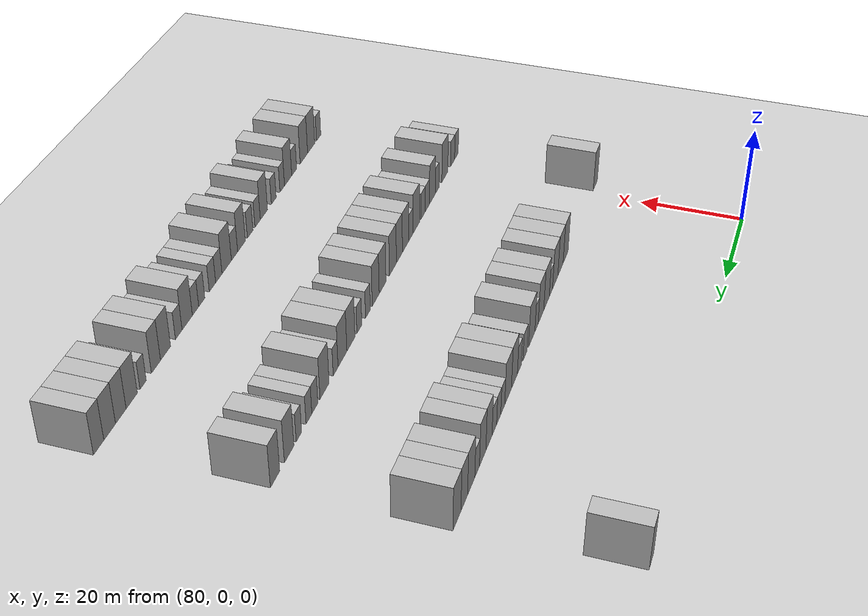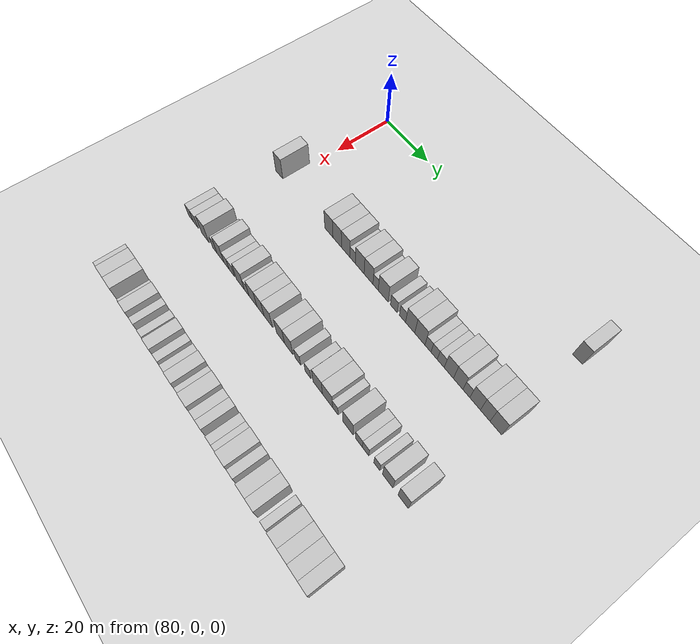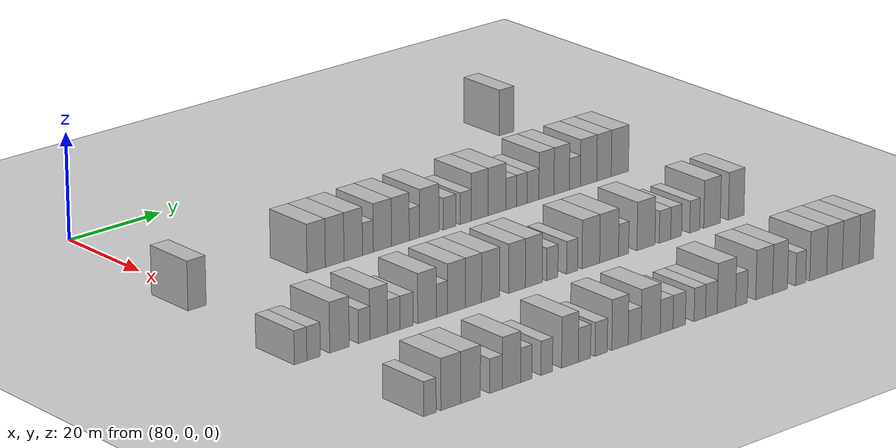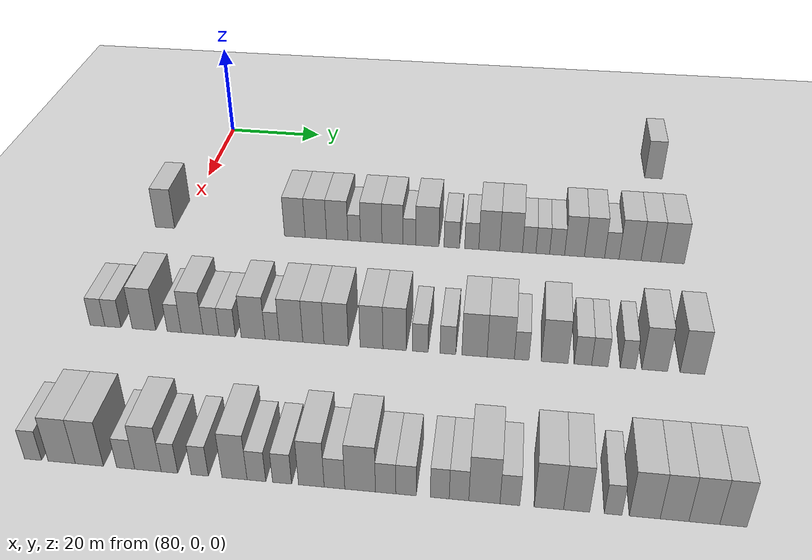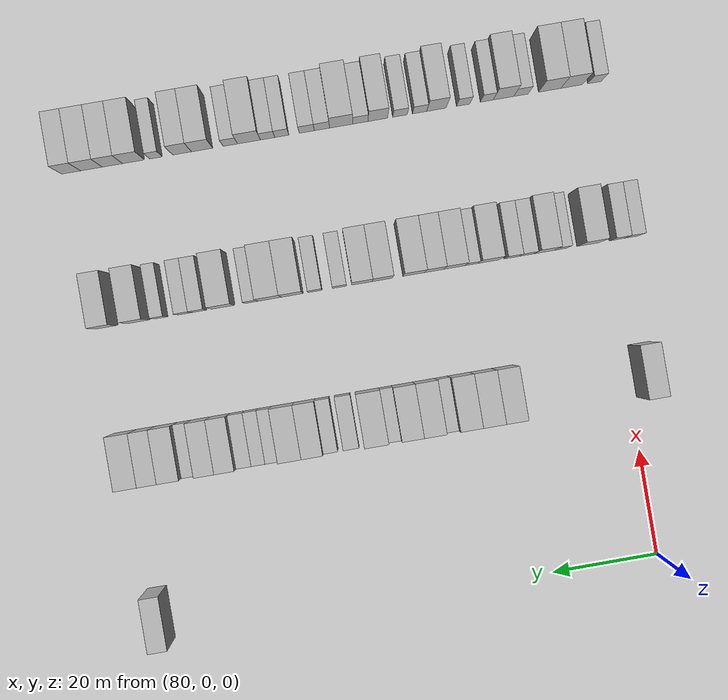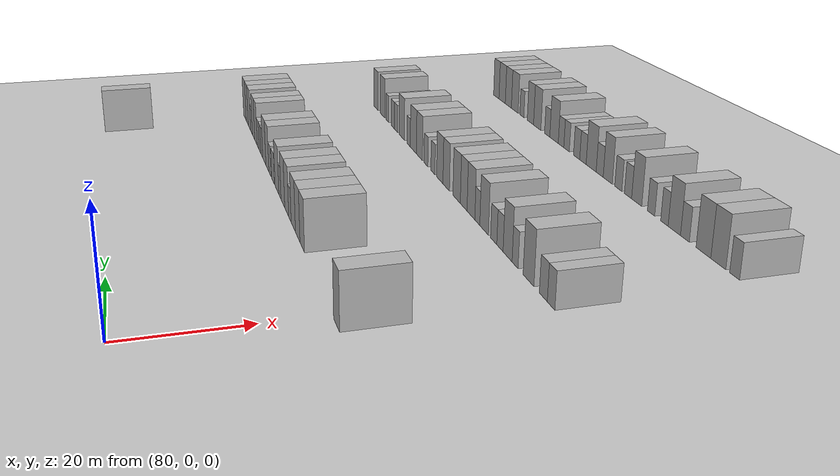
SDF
<sdf version="1.6">
 <world name="default">
  <include>
   <name>ground_plane_2</name>
   <uri>model://HANNAS_ground_plane</uri>
   <pose>100 0 0  0 0 0</pose>
  </include>
  <model name="building_577">
   <static>1</static>
   <pose>85.0000 94.3091 0 0.000000 0.000000 0.000000</pose>
   <link name="link">
    <pose>0 0 4.50 0 0 0</pose>
    <collision name="collision"><geometry><box><size>10.0000 3.6512 9.0000</size></box></geometry></collision>
    <visual name="visual">
     <cast_shadows>0</cast_shadows>
     <geometry><box><size>10.0000 3.6512 9.0000</size></box></geometry>
     <material>
      <script>
       <uri>model://HANNAS_wall/materials/scripts</uri>
       <uri>model://HANNAS_wall/materials/textures</uri>
       <name>vrc/HANNAS_wall</name>
      </script>
     </material>
    </visual>
   </link>
  </model>
  <model name="building_777">
   <static>1</static>
   <pose>115.0000 -3.0994 0 0.000000 0.000000 0.000000</pose>
   <link name="link">
    <pose>0 0 4.50 0 0 0</pose>
    <collision name="collision"><geometry><box><size>10.0000 3.8990 9.0000</size></box></geometry></collision>
    <visual name="visual">
     <cast_shadows>0</cast_shadows>
     <geometry><box><size>10.0000 3.8990 9.0000</size></box></geometry>
     <material>
      <script>
       <uri>model://HANNAS_wall/materials/scripts</uri>
       <uri>model://HANNAS_wall/materials/textures</uri>
       <name>vrc/HANNAS_wall</name>
      </script>
     </material>
    </visual>
   </link>
  </model>
  <model name="building_778">
   <static>1</static>
   <pose>115.0000 22.9925 0 0.000000 0.000000 0.000000</pose>
   <link name="link">
    <pose>0 0 4.50 0 0 0</pose>
    <collision name="collision"><geometry><box><size>10.0000 4.0949 9.0000</size></box></geometry></collision>
    <visual name="visual">
     <cast_shadows>0</cast_shadows>
     <geometry><box><size>10.0000 4.0949 9.0000</size></box></geometry>
     <material>
      <script>
       <uri>model://HANNAS_wall/materials/scripts</uri>
       <uri>model://HANNAS_wall/materials/textures</uri>
       <name>vrc/HANNAS_wall</name>
      </script>
     </material>
    </visual>
   </link>
  </model>
  <model name="building_779">
   <static>1</static>
   <pose>115.0000 27.1511 0 0.000000 0.000000 0.000000</pose>
   <link name="link">
    <pose>0 0 4.50 0 0 0</pose>
    <collision name="collision"><geometry><box><size>10.0000 4.2223 9.0000</size></box></geometry></collision>
    <visual name="visual">
     <cast_shadows>0</cast_shadows>
     <geometry><box><size>10.0000 4.2223 9.0000</size></box></geometry>
     <material>
      <script>
       <uri>model://HANNAS_wall/materials/scripts</uri>
       <uri>model://HANNAS_wall/materials/textures</uri>
       <name>vrc/HANNAS_wall</name>
      </script>
     </material>
    </visual>
   </link>
  </model>
  <model name="building_780">
   <static>1</static>
   <pose>115.0000 31.3556 0 0.000000 0.000000 0.000000</pose>
   <link name="link">
    <pose>0 0 4.50 0 0 0</pose>
    <collision name="collision"><geometry><box><size>10.0000 4.1866 9.0000</size></box></geometry></collision>
    <visual name="visual">
     <cast_shadows>0</cast_shadows>
     <geometry><box><size>10.0000 4.1866 9.0000</size></box></geometry>
     <material>
      <script>
       <uri>model://HANNAS_wall/materials/scripts</uri>
       <uri>model://HANNAS_wall/materials/textures</uri>
       <name>vrc/HANNAS_wall</name>
      </script>
     </material>
    </visual>
   </link>
  </model>
  <model name="building_781">
   <static>1</static>
   <pose>115.0000 34.6882 0 0.000000 0.000000 0.000000</pose>
   <link name="link">
    <pose>0 0 3.00 0 0 0</pose>
    <collision name="collision"><geometry><box><size>10.0000 2.4785 6.0000</size></box></geometry></collision>
    <visual name="visual">
     <cast_shadows>0</cast_shadows>
     <geometry><box><size>10.0000 2.4785 6.0000</size></box></geometry>
     <material>
      <script>
       <uri>model://HANNAS_wall/materials/scripts</uri>
       <uri>model://HANNAS_wall/materials/textures</uri>
       <name>vrc/HANNAS_wall</name>
      </script>
     </material>
    </visual>
   </link>
  </model>
  <model name="building_782">
   <static>1</static>
   <pose>115.0000 38.0167 0 0.000000 0.000000 0.000000</pose>
   <link name="link">
    <pose>0 0 4.50 0 0 0</pose>
    <collision name="collision"><geometry><box><size>10.0000 4.1785 9.0000</size></box></geometry></collision>
    <visual name="visual">
     <cast_shadows>0</cast_shadows>
     <geometry><box><size>10.0000 4.1785 9.0000</size></box></geometry>
     <material>
      <script>
       <uri>model://HANNAS_wall/materials/scripts</uri>
       <uri>model://HANNAS_wall/materials/textures</uri>
       <name>vrc/HANNAS_wall</name>
      </script>
     </material>
    </visual>
   </link>
  </model>
  <model name="building_783">
   <static>1</static>
   <pose>115.0000 42.1604 0 0.000000 0.000000 0.000000</pose>
   <link name="link">
    <pose>0 0 4.50 0 0 0</pose>
    <collision name="collision"><geometry><box><size>10.0000 4.1090 9.0000</size></box></geometry></collision>
    <visual name="visual">
     <cast_shadows>0</cast_shadows>
     <geometry><box><size>10.0000 4.1090 9.0000</size></box></geometry>
     <material>
      <script>
       <uri>model://HANNAS_wall/materials/scripts</uri>
       <uri>model://HANNAS_wall/materials/textures</uri>
       <name>vrc/HANNAS_wall</name>
      </script>
     </material>
    </visual>
   </link>
  </model>
  <model name="building_784">
   <static>1</static>
   <pose>115.0000 45.4229 0 0.000000 0.000000 0.000000</pose>
   <link name="link">
    <pose>0 0 3.00 0 0 0</pose>
    <collision name="collision"><geometry><box><size>10.0000 2.4161 6.0000</size></box></geometry></collision>
    <visual name="visual">
     <cast_shadows>0</cast_shadows>
     <geometry><box><size>10.0000 2.4161 6.0000</size></box></geometry>
     <material>
      <script>
       <uri>model://HANNAS_wall/materials/scripts</uri>
       <uri>model://HANNAS_wall/materials/textures</uri>
       <name>vrc/HANNAS_wall</name>
      </script>
     </material>
    </visual>
   </link>
  </model>
  <model name="building_785">
   <static>1</static>
   <pose>115.0000 48.8752 0 0.000000 0.000000 0.000000</pose>
   <link name="link">
    <pose>0 0 4.50 0 0 0</pose>
    <collision name="collision"><geometry><box><size>10.0000 4.4884 9.0000</size></box></geometry></collision>
    <visual name="visual">
     <cast_shadows>0</cast_shadows>
     <geometry><box><size>10.0000 4.4884 9.0000</size></box></geometry>
     <material>
      <script>
       <uri>model://HANNAS_wall/materials/scripts</uri>
       <uri>model://HANNAS_wall/materials/textures</uri>
       <name>vrc/HANNAS_wall</name>
      </script>
     </material>
    </visual>
   </link>
  </model>
  <model name="building_786">
   <static>1</static>
   <pose>115.0000 53.6081 0 0.000000 0.000000 0.000000</pose>
   <link name="link">
    <pose>0 0 3.00 0 0 0</pose>
    <collision name="collision"><geometry><box><size>10.0000 2.9774 6.0000</size></box></geometry></collision>
    <visual name="visual">
     <cast_shadows>0</cast_shadows>
     <geometry><box><size>10.0000 2.9774 6.0000</size></box></geometry>
     <material>
      <script>
       <uri>model://HANNAS_wall/materials/scripts</uri>
       <uri>model://HANNAS_wall/materials/textures</uri>
       <name>vrc/HANNAS_wall</name>
      </script>
     </material>
    </visual>
   </link>
  </model>
  <model name="building_787">
   <static>1</static>
   <pose>115.0000 57.4456 0 0.000000 0.000000 0.000000</pose>
   <link name="link">
    <pose>0 0 3.00 0 0 0</pose>
    <collision name="collision"><geometry><box><size>10.0000 2.6976 6.0000</size></box></geometry></collision>
    <visual name="visual">
     <cast_shadows>0</cast_shadows>
     <geometry><box><size>10.0000 2.6976 6.0000</size></box></geometry>
     <material>
      <script>
       <uri>model://HANNAS_wall/materials/scripts</uri>
       <uri>model://HANNAS_wall/materials/textures</uri>
       <name>vrc/HANNAS_wall</name>
      </script>
     </material>
    </visual>
   </link>
  </model>
  <model name="building_788">
   <static>1</static>
   <pose>115.0000 60.7862 0 0.000000 0.000000 0.000000</pose>
   <link name="link">
    <pose>0 0 4.50 0 0 0</pose>
    <collision name="collision"><geometry><box><size>10.0000 3.9835 9.0000</size></box></geometry></collision>
    <visual name="visual">
     <cast_shadows>0</cast_shadows>
     <geometry><box><size>10.0000 3.9835 9.0000</size></box></geometry>
     <material>
      <script>
       <uri>model://HANNAS_wall/materials/scripts</uri>
       <uri>model://HANNAS_wall/materials/textures</uri>
       <name>vrc/HANNAS_wall</name>
      </script>
     </material>
    </visual>
   </link>
  </model>
  <model name="building_789">
   <static>1</static>
   <pose>115.0000 64.9398 0 0.000000 0.000000 0.000000</pose>
   <link name="link">
    <pose>0 0 4.50 0 0 0</pose>
    <collision name="collision"><geometry><box><size>10.0000 4.3238 9.0000</size></box></geometry></collision>
    <visual name="visual">
     <cast_shadows>0</cast_shadows>
     <geometry><box><size>10.0000 4.3238 9.0000</size></box></geometry>
     <material>
      <script>
       <uri>model://HANNAS_wall/materials/scripts</uri>
       <uri>model://HANNAS_wall/materials/textures</uri>
       <name>vrc/HANNAS_wall</name>
      </script>
     </material>
    </visual>
   </link>
  </model>
  <model name="building_790">
   <static>1</static>
   <pose>115.0000 68.3744 0 0.000000 0.000000 0.000000</pose>
   <link name="link">
    <pose>0 0 3.00 0 0 0</pose>
    <collision name="collision"><geometry><box><size>10.0000 2.5454 6.0000</size></box></geometry></collision>
    <visual name="visual">
     <cast_shadows>0</cast_shadows>
     <geometry><box><size>10.0000 2.5454 6.0000</size></box></geometry>
     <material>
      <script>
       <uri>model://HANNAS_wall/materials/scripts</uri>
       <uri>model://HANNAS_wall/materials/textures</uri>
       <name>vrc/HANNAS_wall</name>
      </script>
     </material>
    </visual>
   </link>
  </model>
  <model name="building_791">
   <static>1</static>
   <pose>115.0000 70.9388 0 0.000000 0.000000 0.000000</pose>
   <link name="link">
    <pose>0 0 3.00 0 0 0</pose>
    <collision name="collision"><geometry><box><size>10.0000 2.5836 6.0000</size></box></geometry></collision>
    <visual name="visual">
     <cast_shadows>0</cast_shadows>
     <geometry><box><size>10.0000 2.5836 6.0000</size></box></geometry>
     <material>
      <script>
       <uri>model://HANNAS_wall/materials/scripts</uri>
       <uri>model://HANNAS_wall/materials/textures</uri>
       <name>vrc/HANNAS_wall</name>
      </script>
     </material>
    </visual>
   </link>
  </model>
  <model name="building_792">
   <static>1</static>
   <pose>115.0000 73.6442 0 0.000000 0.000000 0.000000</pose>
   <link name="link">
    <pose>0 0 3.00 0 0 0</pose>
    <collision name="collision"><geometry><box><size>10.0000 2.8272 6.0000</size></box></geometry></collision>
    <visual name="visual">
     <cast_shadows>0</cast_shadows>
     <geometry><box><size>10.0000 2.8272 6.0000</size></box></geometry>
     <material>
      <script>
       <uri>model://HANNAS_wall/materials/scripts</uri>
       <uri>model://HANNAS_wall/materials/textures</uri>
       <name>vrc/HANNAS_wall</name>
      </script>
     </material>
    </visual>
   </link>
  </model>
  <model name="building_793">
   <static>1</static>
   <pose>115.0000 76.9176 0 0.000000 0.000000 0.000000</pose>
   <link name="link">
    <pose>0 0 4.50 0 0 0</pose>
    <collision name="collision"><geometry><box><size>10.0000 3.7197 9.0000</size></box></geometry></collision>
    <visual name="visual">
     <cast_shadows>0</cast_shadows>
     <geometry><box><size>10.0000 3.7197 9.0000</size></box></geometry>
     <material>
      <script>
       <uri>model://HANNAS_wall/materials/scripts</uri>
       <uri>model://HANNAS_wall/materials/textures</uri>
       <name>vrc/HANNAS_wall</name>
      </script>
     </material>
    </visual>
   </link>
  </model>
  <model name="building_794">
   <static>1</static>
   <pose>115.0000 80.6599 0 0.000000 0.000000 0.000000</pose>
   <link name="link">
    <pose>0 0 4.50 0 0 0</pose>
    <collision name="collision"><geometry><box><size>10.0000 3.7649 9.0000</size></box></geometry></collision>
    <visual name="visual">
     <cast_shadows>0</cast_shadows>
     <geometry><box><size>10.0000 3.7649 9.0000</size></box></geometry>
     <material>
      <script>
       <uri>model://HANNAS_wall/materials/scripts</uri>
       <uri>model://HANNAS_wall/materials/textures</uri>
       <name>vrc/HANNAS_wall</name>
      </script>
     </material>
    </visual>
   </link>
  </model>
  <model name="building_795">
   <static>1</static>
   <pose>115.0000 83.8938 0 0.000000 0.000000 0.000000</pose>
   <link name="link">
    <pose>0 0 3.00 0 0 0</pose>
    <collision name="collision"><geometry><box><size>10.0000 2.7027 6.0000</size></box></geometry></collision>
    <visual name="visual">
     <cast_shadows>0</cast_shadows>
     <geometry><box><size>10.0000 2.7027 6.0000</size></box></geometry>
     <material>
      <script>
       <uri>model://HANNAS_wall/materials/scripts</uri>
       <uri>model://HANNAS_wall/materials/textures</uri>
       <name>vrc/HANNAS_wall</name>
      </script>
     </material>
    </visual>
   </link>
  </model>
  <model name="building_796">
   <static>1</static>
   <pose>115.0000 87.2773 0 0.000000 0.000000 0.000000</pose>
   <link name="link">
    <pose>0 0 4.50 0 0 0</pose>
    <collision name="collision"><geometry><box><size>10.0000 4.0643 9.0000</size></box></geometry></collision>
    <visual name="visual">
     <cast_shadows>0</cast_shadows>
     <geometry><box><size>10.0000 4.0643 9.0000</size></box></geometry>
     <material>
      <script>
       <uri>model://HANNAS_wall/materials/scripts</uri>
       <uri>model://HANNAS_wall/materials/textures</uri>
       <name>vrc/HANNAS_wall</name>
      </script>
     </material>
    </visual>
   </link>
  </model>
  <model name="building_797">
   <static>1</static>
   <pose>115.0000 91.1376 0 0.000000 0.000000 0.000000</pose>
   <link name="link">
    <pose>0 0 4.50 0 0 0</pose>
    <collision name="collision"><geometry><box><size>10.0000 3.6563 9.0000</size></box></geometry></collision>
    <visual name="visual">
     <cast_shadows>0</cast_shadows>
     <geometry><box><size>10.0000 3.6563 9.0000</size></box></geometry>
     <material>
      <script>
       <uri>model://HANNAS_wall/materials/scripts</uri>
       <uri>model://HANNAS_wall/materials/textures</uri>
       <name>vrc/HANNAS_wall</name>
      </script>
     </material>
    </visual>
   </link>
  </model>
  <model name="building_798">
   <static>1</static>
   <pose>115.0000 95.1364 0 0.000000 0.000000 0.000000</pose>
   <link name="link">
    <pose>0 0 4.50 0 0 0</pose>
    <collision name="collision"><geometry><box><size>10.0000 4.3415 9.0000</size></box></geometry></collision>
    <visual name="visual">
     <cast_shadows>0</cast_shadows>
     <geometry><box><size>10.0000 4.3415 9.0000</size></box></geometry>
     <material>
      <script>
       <uri>model://HANNAS_wall/materials/scripts</uri>
       <uri>model://HANNAS_wall/materials/textures</uri>
       <name>vrc/HANNAS_wall</name>
      </script>
     </material>
    </visual>
   </link>
  </model>
  <model name="building_1003">
   <static>1</static>
   <pose>145.0000 -5.2427 0 0.000000 0.000000 0.000000</pose>
   <link name="link">
    <pose>0 0 3.00 0 0 0</pose>
    <collision name="collision"><geometry><box><size>10.0000 2.6466 6.0000</size></box></geometry></collision>
    <visual name="visual">
     <cast_shadows>0</cast_shadows>
     <geometry><box><size>10.0000 2.6466 6.0000</size></box></geometry>
     <material>
      <script>
       <uri>model://HANNAS_wall/materials/scripts</uri>
       <uri>model://HANNAS_wall/materials/textures</uri>
       <name>vrc/HANNAS_wall</name>
      </script>
     </material>
    </visual>
   </link>
  </model>
  <model name="building_1004">
   <static>1</static>
   <pose>145.0000 -2.4857 0 0.000000 0.000000 0.000000</pose>
   <link name="link">
    <pose>0 0 3.00 0 0 0</pose>
    <collision name="collision"><geometry><box><size>10.0000 2.8674 6.0000</size></box></geometry></collision>
    <visual name="visual">
     <cast_shadows>0</cast_shadows>
     <geometry><box><size>10.0000 2.8674 6.0000</size></box></geometry>
     <material>
      <script>
       <uri>model://HANNAS_wall/materials/scripts</uri>
       <uri>model://HANNAS_wall/materials/textures</uri>
       <name>vrc/HANNAS_wall</name>
      </script>
     </material>
    </visual>
   </link>
  </model>
  <model name="building_1005">
   <static>1</static>
   <pose>145.0000 3.0453 0 0.000000 0.000000 0.000000</pose>
   <link name="link">
    <pose>0 0 4.50 0 0 0</pose>
    <collision name="collision"><geometry><box><size>10.0000 4.1947 9.0000</size></box></geometry></collision>
    <visual name="visual">
     <cast_shadows>0</cast_shadows>
     <geometry><box><size>10.0000 4.1947 9.0000</size></box></geometry>
     <material>
      <script>
       <uri>model://HANNAS_wall/materials/scripts</uri>
       <uri>model://HANNAS_wall/materials/textures</uri>
       <name>vrc/HANNAS_wall</name>
      </script>
     </material>
    </visual>
   </link>
  </model>
  <model name="building_1006">
   <static>1</static>
   <pose>145.0000 8.3765 0 0.000000 0.000000 0.000000</pose>
   <link name="link">
    <pose>0 0 3.00 0 0 0</pose>
    <collision name="collision"><geometry><box><size>10.0000 2.4677 6.0000</size></box></geometry></collision>
    <visual name="visual">
     <cast_shadows>0</cast_shadows>
     <geometry><box><size>10.0000 2.4677 6.0000</size></box></geometry>
     <material>
      <script>
       <uri>model://HANNAS_wall/materials/scripts</uri>
       <uri>model://HANNAS_wall/materials/textures</uri>
       <name>vrc/HANNAS_wall</name>
      </script>
     </material>
    </visual>
   </link>
  </model>
  <model name="building_1007">
   <static>1</static>
   <pose>145.0000 11.5350 0 0.000000 0.000000 0.000000</pose>
   <link name="link">
    <pose>0 0 4.50 0 0 0</pose>
    <collision name="collision"><geometry><box><size>10.0000 3.8492 9.0000</size></box></geometry></collision>
    <visual name="visual">
     <cast_shadows>0</cast_shadows>
     <geometry><box><size>10.0000 3.8492 9.0000</size></box></geometry>
     <material>
      <script>
       <uri>model://HANNAS_wall/materials/scripts</uri>
       <uri>model://HANNAS_wall/materials/textures</uri>
       <name>vrc/HANNAS_wall</name>
      </script>
     </material>
    </visual>
   </link>
  </model>
  <model name="building_1008">
   <static>1</static>
   <pose>145.0000 14.8482 0 0.000000 0.000000 0.000000</pose>
   <link name="link">
    <pose>0 0 3.00 0 0 0</pose>
    <collision name="collision"><geometry><box><size>10.0000 2.7772 6.0000</size></box></geometry></collision>
    <visual name="visual">
     <cast_shadows>0</cast_shadows>
     <geometry><box><size>10.0000 2.7772 6.0000</size></box></geometry>
     <material>
      <script>
       <uri>model://HANNAS_wall/materials/scripts</uri>
       <uri>model://HANNAS_wall/materials/textures</uri>
       <name>vrc/HANNAS_wall</name>
      </script>
     </material>
    </visual>
   </link>
  </model>
  <model name="building_1009">
   <static>1</static>
   <pose>145.0000 17.6708 0 0.000000 0.000000 0.000000</pose>
   <link name="link">
    <pose>0 0 3.00 0 0 0</pose>
    <collision name="collision"><geometry><box><size>10.0000 2.8681 6.0000</size></box></geometry></collision>
    <visual name="visual">
     <cast_shadows>0</cast_shadows>
     <geometry><box><size>10.0000 2.8681 6.0000</size></box></geometry>
     <material>
      <script>
       <uri>model://HANNAS_wall/materials/scripts</uri>
       <uri>model://HANNAS_wall/materials/textures</uri>
       <name>vrc/HANNAS_wall</name>
      </script>
     </material>
    </visual>
   </link>
  </model>
  <model name="building_1010">
   <static>1</static>
   <pose>145.0000 22.1855 0 0.000000 0.000000 0.000000</pose>
   <link name="link">
    <pose>0 0 4.50 0 0 0</pose>
    <collision name="collision"><geometry><box><size>10.0000 4.1613 9.0000</size></box></geometry></collision>
    <visual name="visual">
     <cast_shadows>0</cast_shadows>
     <geometry><box><size>10.0000 4.1613 9.0000</size></box></geometry>
     <material>
      <script>
       <uri>model://HANNAS_wall/materials/scripts</uri>
       <uri>model://HANNAS_wall/materials/textures</uri>
       <name>vrc/HANNAS_wall</name>
      </script>
     </material>
    </visual>
   </link>
  </model>
  <model name="building_1011">
   <static>1</static>
   <pose>145.0000 25.4973 0 0.000000 0.000000 0.000000</pose>
   <link name="link">
    <pose>0 0 3.00 0 0 0</pose>
    <collision name="collision"><geometry><box><size>10.0000 2.4622 6.0000</size></box></geometry></collision>
    <visual name="visual">
     <cast_shadows>0</cast_shadows>
     <geometry><box><size>10.0000 2.4622 6.0000</size></box></geometry>
     <material>
      <script>
       <uri>model://HANNAS_wall/materials/scripts</uri>
       <uri>model://HANNAS_wall/materials/textures</uri>
       <name>vrc/HANNAS_wall</name>
      </script>
     </material>
    </visual>
   </link>
  </model>
  <model name="building_1012">
   <static>1</static>
   <pose>145.0000 28.7486 0 0.000000 0.000000 0.000000</pose>
   <link name="link">
    <pose>0 0 4.50 0 0 0</pose>
    <collision name="collision"><geometry><box><size>10.0000 4.0405 9.0000</size></box></geometry></collision>
    <visual name="visual">
     <cast_shadows>0</cast_shadows>
     <geometry><box><size>10.0000 4.0405 9.0000</size></box></geometry>
     <material>
      <script>
       <uri>model://HANNAS_wall/materials/scripts</uri>
       <uri>model://HANNAS_wall/materials/textures</uri>
       <name>vrc/HANNAS_wall</name>
      </script>
     </material>
    </visual>
   </link>
  </model>
  <model name="building_1013">
   <static>1</static>
   <pose>145.0000 32.5819 0 0.000000 0.000000 0.000000</pose>
   <link name="link">
    <pose>0 0 4.50 0 0 0</pose>
    <collision name="collision"><geometry><box><size>10.0000 3.6259 9.0000</size></box></geometry></collision>
    <visual name="visual">
     <cast_shadows>0</cast_shadows>
     <geometry><box><size>10.0000 3.6259 9.0000</size></box></geometry>
     <material>
      <script>
       <uri>model://HANNAS_wall/materials/scripts</uri>
       <uri>model://HANNAS_wall/materials/textures</uri>
       <name>vrc/HANNAS_wall</name>
      </script>
     </material>
    </visual>
   </link>
  </model>
  <model name="building_1014">
   <static>1</static>
   <pose>145.0000 36.4689 0 0.000000 0.000000 0.000000</pose>
   <link name="link">
    <pose>0 0 4.50 0 0 0</pose>
    <collision name="collision"><geometry><box><size>10.0000 4.1482 9.0000</size></box></geometry></collision>
    <visual name="visual">
     <cast_shadows>0</cast_shadows>
     <geometry><box><size>10.0000 4.1482 9.0000</size></box></geometry>
     <material>
      <script>
       <uri>model://HANNAS_wall/materials/scripts</uri>
       <uri>model://HANNAS_wall/materials/textures</uri>
       <name>vrc/HANNAS_wall</name>
      </script>
     </material>
    </visual>
   </link>
  </model>
  <model name="building_1015">
   <static>1</static>
   <pose>145.0000 42.4799 0 0.000000 0.000000 0.000000</pose>
   <link name="link">
    <pose>0 0 4.50 0 0 0</pose>
    <collision name="collision"><geometry><box><size>10.0000 3.8737 9.0000</size></box></geometry></collision>
    <visual name="visual">
     <cast_shadows>0</cast_shadows>
     <geometry><box><size>10.0000 3.8737 9.0000</size></box></geometry>
     <material>
      <script>
       <uri>model://HANNAS_wall/materials/scripts</uri>
       <uri>model://HANNAS_wall/materials/textures</uri>
       <name>vrc/HANNAS_wall</name>
      </script>
     </material>
    </visual>
   </link>
  </model>
  <model name="building_1016">
   <static>1</static>
   <pose>145.0000 46.3799 0 0.000000 0.000000 0.000000</pose>
   <link name="link">
    <pose>0 0 4.50 0 0 0</pose>
    <collision name="collision"><geometry><box><size>10.0000 3.9263 9.0000</size></box></geometry></collision>
    <visual name="visual">
     <cast_shadows>0</cast_shadows>
     <geometry><box><size>10.0000 3.9263 9.0000</size></box></geometry>
     <material>
      <script>
       <uri>model://HANNAS_wall/materials/scripts</uri>
       <uri>model://HANNAS_wall/materials/textures</uri>
       <name>vrc/HANNAS_wall</name>
      </script>
     </material>
    </visual>
   </link>
  </model>
  <model name="building_1017">
   <static>1</static>
   <pose>145.0000 50.6703 0 0.000000 0.000000 0.000000</pose>
   <link name="link">
    <pose>0 0 3.00 0 0 0</pose>
    <collision name="collision"><geometry><box><size>10.0000 2.6545 6.0000</size></box></geometry></collision>
    <visual name="visual">
     <cast_shadows>0</cast_shadows>
     <geometry><box><size>10.0000 2.6545 6.0000</size></box></geometry>
     <material>
      <script>
       <uri>model://HANNAS_wall/materials/scripts</uri>
       <uri>model://HANNAS_wall/materials/textures</uri>
       <name>vrc/HANNAS_wall</name>
      </script>
     </material>
    </visual>
   </link>
  </model>
  <model name="building_1018">
   <static>1</static>
   <pose>145.0000 55.3185 0 0.000000 0.000000 0.000000</pose>
   <link name="link">
    <pose>0 0 3.00 0 0 0</pose>
    <collision name="collision"><geometry><box><size>10.0000 2.6419 6.0000</size></box></geometry></collision>
    <visual name="visual">
     <cast_shadows>0</cast_shadows>
     <geometry><box><size>10.0000 2.6419 6.0000</size></box></geometry>
     <material>
      <script>
       <uri>model://HANNAS_wall/materials/scripts</uri>
       <uri>model://HANNAS_wall/materials/textures</uri>
       <name>vrc/HANNAS_wall</name>
      </script>
     </material>
    </visual>
   </link>
  </model>
  <model name="building_1019">
   <static>1</static>
   <pose>145.0000 59.7385 0 0.000000 0.000000 0.000000</pose>
   <link name="link">
    <pose>0 0 4.50 0 0 0</pose>
    <collision name="collision"><geometry><box><size>10.0000 4.1981 9.0000</size></box></geometry></collision>
    <visual name="visual">
     <cast_shadows>0</cast_shadows>
     <geometry><box><size>10.0000 4.1981 9.0000</size></box></geometry>
     <material>
      <script>
       <uri>model://HANNAS_wall/materials/scripts</uri>
       <uri>model://HANNAS_wall/materials/textures</uri>
       <name>vrc/HANNAS_wall</name>
      </script>
     </material>
    </visual>
   </link>
  </model>
  <model name="building_1020">
   <static>1</static>
   <pose>145.0000 64.0819 0 0.000000 0.000000 0.000000</pose>
   <link name="link">
    <pose>0 0 4.50 0 0 0</pose>
    <collision name="collision"><geometry><box><size>10.0000 4.4887 9.0000</size></box></geometry></collision>
    <visual name="visual">
     <cast_shadows>0</cast_shadows>
     <geometry><box><size>10.0000 4.4887 9.0000</size></box></geometry>
     <material>
      <script>
       <uri>model://HANNAS_wall/materials/scripts</uri>
       <uri>model://HANNAS_wall/materials/textures</uri>
       <name>vrc/HANNAS_wall</name>
      </script>
     </material>
    </visual>
   </link>
  </model>
  <model name="building_1021">
   <static>1</static>
   <pose>145.0000 67.5317 0 0.000000 0.000000 0.000000</pose>
   <link name="link">
    <pose>0 0 3.00 0 0 0</pose>
    <collision name="collision"><geometry><box><size>10.0000 2.4108 6.0000</size></box></geometry></collision>
    <visual name="visual">
     <cast_shadows>0</cast_shadows>
     <geometry><box><size>10.0000 2.4108 6.0000</size></box></geometry>
     <material>
      <script>
       <uri>model://HANNAS_wall/materials/scripts</uri>
       <uri>model://HANNAS_wall/materials/textures</uri>
       <name>vrc/HANNAS_wall</name>
      </script>
     </material>
    </visual>
   </link>
  </model>
  <model name="building_1022">
   <static>1</static>
   <pose>145.0000 72.9287 0 0.000000 0.000000 0.000000</pose>
   <link name="link">
    <pose>0 0 4.50 0 0 0</pose>
    <collision name="collision"><geometry><box><size>10.0000 4.3832 9.0000</size></box></geometry></collision>
    <visual name="visual">
     <cast_shadows>0</cast_shadows>
     <geometry><box><size>10.0000 4.3832 9.0000</size></box></geometry>
     <material>
      <script>
       <uri>model://HANNAS_wall/materials/scripts</uri>
       <uri>model://HANNAS_wall/materials/textures</uri>
       <name>vrc/HANNAS_wall</name>
      </script>
     </material>
    </visual>
   </link>
  </model>
  <model name="building_1023">
   <static>1</static>
   <pose>145.0000 77.5375 0 0.000000 0.000000 0.000000</pose>
   <link name="link">
    <pose>0 0 3.00 0 0 0</pose>
    <collision name="collision"><geometry><box><size>10.0000 2.8345 6.0000</size></box></geometry></collision>
    <visual name="visual">
     <cast_shadows>0</cast_shadows>
     <geometry><box><size>10.0000 2.8345 6.0000</size></box></geometry>
     <material>
      <script>
       <uri>model://HANNAS_wall/materials/scripts</uri>
       <uri>model://HANNAS_wall/materials/textures</uri>
       <name>vrc/HANNAS_wall</name>
      </script>
     </material>
    </visual>
   </link>
  </model>
  <model name="building_1024">
   <static>1</static>
   <pose>145.0000 80.2801 0 0.000000 0.000000 0.000000</pose>
   <link name="link">
    <pose>0 0 3.00 0 0 0</pose>
    <collision name="collision"><geometry><box><size>10.0000 2.6506 6.0000</size></box></geometry></collision>
    <visual name="visual">
     <cast_shadows>0</cast_shadows>
     <geometry><box><size>10.0000 2.6506 6.0000</size></box></geometry>
     <material>
      <script>
       <uri>model://HANNAS_wall/materials/scripts</uri>
       <uri>model://HANNAS_wall/materials/textures</uri>
       <name>vrc/HANNAS_wall</name>
      </script>
     </material>
    </visual>
   </link>
  </model>
  <model name="building_1025">
   <static>1</static>
   <pose>145.0000 84.8356 0 0.000000 0.000000 0.000000</pose>
   <link name="link">
    <pose>0 0 3.00 0 0 0</pose>
    <collision name="collision"><geometry><box><size>10.0000 2.4604 6.0000</size></box></geometry></collision>
    <visual name="visual">
     <cast_shadows>0</cast_shadows>
     <geometry><box><size>10.0000 2.4604 6.0000</size></box></geometry>
     <material>
      <script>
       <uri>model://HANNAS_wall/materials/scripts</uri>
       <uri>model://HANNAS_wall/materials/textures</uri>
       <name>vrc/HANNAS_wall</name>
      </script>
     </material>
    </visual>
   </link>
  </model>
  <model name="building_1026">
   <static>1</static>
   <pose>145.0000 89.1288 0 0.000000 0.000000 0.000000</pose>
   <link name="link">
    <pose>0 0 4.50 0 0 0</pose>
    <collision name="collision"><geometry><box><size>10.0000 4.1259 9.0000</size></box></geometry></collision>
    <visual name="visual">
     <cast_shadows>0</cast_shadows>
     <geometry><box><size>10.0000 4.1259 9.0000</size></box></geometry>
     <material>
      <script>
       <uri>model://HANNAS_wall/materials/scripts</uri>
       <uri>model://HANNAS_wall/materials/textures</uri>
       <name>vrc/HANNAS_wall</name>
      </script>
     </material>
    </visual>
   </link>
  </model>
  <model name="building_1027">
   <static>1</static>
   <pose>145.0000 95.1551 0 0.000000 0.000000 0.000000</pose>
   <link name="link">
    <pose>0 0 4.50 0 0 0</pose>
    <collision name="collision"><geometry><box><size>10.0000 3.9268 9.0000</size></box></geometry></collision>
    <visual name="visual">
     <cast_shadows>0</cast_shadows>
     <geometry><box><size>10.0000 3.9268 9.0000</size></box></geometry>
     <material>
      <script>
       <uri>model://HANNAS_wall/materials/scripts</uri>
       <uri>model://HANNAS_wall/materials/textures</uri>
       <name>vrc/HANNAS_wall</name>
      </script>
     </material>
    </visual>
   </link>
  </model>
  <model name="building_1222">
   <static>1</static>
   <pose>175.0000 -3.3990 0 0.000000 0.000000 0.000000</pose>
   <link name="link">
    <pose>0 0 3.00 0 0 0</pose>
    <collision name="collision"><geometry><box><size>10.0000 2.6254 6.0000</size></box></geometry></collision>
    <visual name="visual">
     <cast_shadows>0</cast_shadows>
     <geometry><box><size>10.0000 2.6254 6.0000</size></box></geometry>
     <material>
      <script>
       <uri>model://HANNAS_wall/materials/scripts</uri>
       <uri>model://HANNAS_wall/materials/textures</uri>
       <name>vrc/HANNAS_wall</name>
      </script>
     </material>
    </visual>
   </link>
  </model>
  <model name="building_1223">
   <static>1</static>
   <pose>175.0000 0.9934 0 0.000000 0.000000 0.000000</pose>
   <link name="link">
    <pose>0 0 4.50 0 0 0</pose>
    <collision name="collision"><geometry><box><size>10.0000 4.1595 9.0000</size></box></geometry></collision>
    <visual name="visual">
     <cast_shadows>0</cast_shadows>
     <geometry><box><size>10.0000 4.1595 9.0000</size></box></geometry>
     <material>
      <script>
       <uri>model://HANNAS_wall/materials/scripts</uri>
       <uri>model://HANNAS_wall/materials/textures</uri>
       <name>vrc/HANNAS_wall</name>
      </script>
     </material>
    </visual>
   </link>
  </model>
  <model name="building_1224">
   <static>1</static>
   <pose>175.0000 5.2118 0 0.000000 0.000000 0.000000</pose>
   <link name="link">
    <pose>0 0 4.50 0 0 0</pose>
    <collision name="collision"><geometry><box><size>10.0000 4.2771 9.0000</size></box></geometry></collision>
    <visual name="visual">
     <cast_shadows>0</cast_shadows>
     <geometry><box><size>10.0000 4.2771 9.0000</size></box></geometry>
     <material>
      <script>
       <uri>model://HANNAS_wall/materials/scripts</uri>
       <uri>model://HANNAS_wall/materials/textures</uri>
       <name>vrc/HANNAS_wall</name>
      </script>
     </material>
    </visual>
   </link>
  </model>
  <model name="building_1225">
   <static>1</static>
   <pose>175.0000 10.7194 0 0.000000 0.000000 0.000000</pose>
   <link name="link">
    <pose>0 0 3.00 0 0 0</pose>
    <collision name="collision"><geometry><box><size>10.0000 2.7381 6.0000</size></box></geometry></collision>
    <visual name="visual">
     <cast_shadows>0</cast_shadows>
     <geometry><box><size>10.0000 2.7381 6.0000</size></box></geometry>
     <material>
      <script>
       <uri>model://HANNAS_wall/materials/scripts</uri>
       <uri>model://HANNAS_wall/materials/textures</uri>
       <name>vrc/HANNAS_wall</name>
      </script>
     </material>
    </visual>
   </link>
  </model>
  <model name="building_1226">
   <static>1</static>
   <pose>175.0000 14.0705 0 0.000000 0.000000 0.000000</pose>
   <link name="link">
    <pose>0 0 4.50 0 0 0</pose>
    <collision name="collision"><geometry><box><size>10.0000 3.9641 9.0000</size></box></geometry></collision>
    <visual name="visual">
     <cast_shadows>0</cast_shadows>
     <geometry><box><size>10.0000 3.9641 9.0000</size></box></geometry>
     <material>
      <script>
       <uri>model://HANNAS_wall/materials/scripts</uri>
       <uri>model://HANNAS_wall/materials/textures</uri>
       <name>vrc/HANNAS_wall</name>
      </script>
     </material>
    </visual>
   </link>
  </model>
  <model name="building_1227">
   <static>1</static>
   <pose>175.0000 17.2888 0 0.000000 0.000000 0.000000</pose>
   <link name="link">
    <pose>0 0 3.00 0 0 0</pose>
    <collision name="collision"><geometry><box><size>10.0000 2.4724 6.0000</size></box></geometry></collision>
    <visual name="visual">
     <cast_shadows>0</cast_shadows>
     <geometry><box><size>10.0000 2.4724 6.0000</size></box></geometry>
     <material>
      <script>
       <uri>model://HANNAS_wall/materials/scripts</uri>
       <uri>model://HANNAS_wall/materials/textures</uri>
       <name>vrc/HANNAS_wall</name>
      </script>
     </material>
    </visual>
   </link>
  </model>
  <model name="building_1228">
   <static>1</static>
   <pose>175.0000 21.8070 0 0.000000 0.000000 0.000000</pose>
   <link name="link">
    <pose>0 0 3.00 0 0 0</pose>
    <collision name="collision"><geometry><box><size>10.0000 2.5641 6.0000</size></box></geometry></collision>
    <visual name="visual">
     <cast_shadows>0</cast_shadows>
     <geometry><box><size>10.0000 2.5641 6.0000</size></box></geometry>
     <material>
      <script>
       <uri>model://HANNAS_wall/materials/scripts</uri>
       <uri>model://HANNAS_wall/materials/textures</uri>
       <name>vrc/HANNAS_wall</name>
      </script>
     </material>
    </visual>
   </link>
  </model>
  <model name="building_1229">
   <static>1</static>
   <pose>175.0000 26.9501 0 0.000000 0.000000 0.000000</pose>
   <link name="link">
    <pose>0 0 4.50 0 0 0</pose>
    <collision name="collision"><geometry><box><size>10.0000 3.7220 9.0000</size></box></geometry></collision>
    <visual name="visual">
     <cast_shadows>0</cast_shadows>
     <geometry><box><size>10.0000 3.7220 9.0000</size></box></geometry>
     <material>
      <script>
       <uri>model://HANNAS_wall/materials/scripts</uri>
       <uri>model://HANNAS_wall/materials/textures</uri>
       <name>vrc/HANNAS_wall</name>
      </script>
     </material>
    </visual>
   </link>
  </model>
  <model name="building_1230">
   <static>1</static>
   <pose>175.0000 30.1795 0 0.000000 0.000000 0.000000</pose>
   <link name="link">
    <pose>0 0 3.00 0 0 0</pose>
    <collision name="collision"><geometry><box><size>10.0000 2.7369 6.0000</size></box></geometry></collision>
    <visual name="visual">
     <cast_shadows>0</cast_shadows>
     <geometry><box><size>10.0000 2.7369 6.0000</size></box></geometry>
     <material>
      <script>
       <uri>model://HANNAS_wall/materials/scripts</uri>
       <uri>model://HANNAS_wall/materials/textures</uri>
       <name>vrc/HANNAS_wall</name>
      </script>
     </material>
    </visual>
   </link>
  </model>
  <model name="building_1231">
   <static>1</static>
   <pose>175.0000 33.9387 0 0.000000 0.000000 0.000000</pose>
   <link name="link">
    <pose>0 0 3.00 0 0 0</pose>
    <collision name="collision"><geometry><box><size>10.0000 2.7813 6.0000</size></box></geometry></collision>
    <visual name="visual">
     <cast_shadows>0</cast_shadows>
     <geometry><box><size>10.0000 2.7813 6.0000</size></box></geometry>
     <material>
      <script>
       <uri>model://HANNAS_wall/materials/scripts</uri>
       <uri>model://HANNAS_wall/materials/textures</uri>
       <name>vrc/HANNAS_wall</name>
      </script>
     </material>
    </visual>
   </link>
  </model>
  <model name="building_1232">
   <static>1</static>
   <pose>175.0000 38.1959 0 0.000000 0.000000 0.000000</pose>
   <link name="link">
    <pose>0 0 4.50 0 0 0</pose>
    <collision name="collision"><geometry><box><size>10.0000 3.7331 9.0000</size></box></geometry></collision>
    <visual name="visual">
     <cast_shadows>0</cast_shadows>
     <geometry><box><size>10.0000 3.7331 9.0000</size></box></geometry>
     <material>
      <script>
       <uri>model://HANNAS_wall/materials/scripts</uri>
       <uri>model://HANNAS_wall/materials/textures</uri>
       <name>vrc/HANNAS_wall</name>
      </script>
     </material>
    </visual>
   </link>
  </model>
  <model name="building_1233">
   <static>1</static>
   <pose>175.0000 41.5516 0 0.000000 0.000000 0.000000</pose>
   <link name="link">
    <pose>0 0 3.00 0 0 0</pose>
    <collision name="collision"><geometry><box><size>10.0000 2.9784 6.0000</size></box></geometry></collision>
    <visual name="visual">
     <cast_shadows>0</cast_shadows>
     <geometry><box><size>10.0000 2.9784 6.0000</size></box></geometry>
     <material>
      <script>
       <uri>model://HANNAS_wall/materials/scripts</uri>
       <uri>model://HANNAS_wall/materials/textures</uri>
       <name>vrc/HANNAS_wall</name>
      </script>
     </material>
    </visual>
   </link>
  </model>
  <model name="building_1234">
   <static>1</static>
   <pose>175.0000 45.2461 0 0.000000 0.000000 0.000000</pose>
   <link name="link">
    <pose>0 0 4.50 0 0 0</pose>
    <collision name="collision"><geometry><box><size>10.0000 4.4106 9.0000</size></box></geometry></collision>
    <visual name="visual">
     <cast_shadows>0</cast_shadows>
     <geometry><box><size>10.0000 4.4106 9.0000</size></box></geometry>
     <material>
      <script>
       <uri>model://HANNAS_wall/materials/scripts</uri>
       <uri>model://HANNAS_wall/materials/textures</uri>
       <name>vrc/HANNAS_wall</name>
      </script>
     </material>
    </visual>
   </link>
  </model>
  <model name="building_1235">
   <static>1</static>
   <pose>175.0000 48.9118 0 0.000000 0.000000 0.000000</pose>
   <link name="link">
    <pose>0 0 3.00 0 0 0</pose>
    <collision name="collision"><geometry><box><size>10.0000 2.9207 6.0000</size></box></geometry></collision>
    <visual name="visual">
     <cast_shadows>0</cast_shadows>
     <geometry><box><size>10.0000 2.9207 6.0000</size></box></geometry>
     <material>
      <script>
       <uri>model://HANNAS_wall/materials/scripts</uri>
       <uri>model://HANNAS_wall/materials/textures</uri>
       <name>vrc/HANNAS_wall</name>
      </script>
     </material>
    </visual>
   </link>
  </model>
  <model name="building_1236">
   <static>1</static>
   <pose>175.0000 51.8197 0 0.000000 0.000000 0.000000</pose>
   <link name="link">
    <pose>0 0 3.00 0 0 0</pose>
    <collision name="collision"><geometry><box><size>10.0000 2.8951 6.0000</size></box></geometry></collision>
    <visual name="visual">
     <cast_shadows>0</cast_shadows>
     <geometry><box><size>10.0000 2.8951 6.0000</size></box></geometry>
     <material>
      <script>
       <uri>model://HANNAS_wall/materials/scripts</uri>
       <uri>model://HANNAS_wall/materials/textures</uri>
       <name>vrc/HANNAS_wall</name>
      </script>
     </material>
    </visual>
   </link>
  </model>
  <model name="building_1237">
   <static>1</static>
   <pose>175.0000 56.6080 0 0.000000 0.000000 0.000000</pose>
   <link name="link">
    <pose>0 0 3.00 0 0 0</pose>
    <collision name="collision"><geometry><box><size>10.0000 2.6814 6.0000</size></box></geometry></collision>
    <visual name="visual">
     <cast_shadows>0</cast_shadows>
     <geometry><box><size>10.0000 2.6814 6.0000</size></box></geometry>
     <material>
      <script>
       <uri>model://HANNAS_wall/materials/scripts</uri>
       <uri>model://HANNAS_wall/materials/textures</uri>
       <name>vrc/HANNAS_wall</name>
      </script>
     </material>
    </visual>
   </link>
  </model>
  <model name="building_1238">
   <static>1</static>
   <pose>175.0000 59.3284 0 0.000000 0.000000 0.000000</pose>
   <link name="link">
    <pose>0 0 3.00 0 0 0</pose>
    <collision name="collision"><geometry><box><size>10.0000 2.7594 6.0000</size></box></geometry></collision>
    <visual name="visual">
     <cast_shadows>0</cast_shadows>
     <geometry><box><size>10.0000 2.7594 6.0000</size></box></geometry>
     <material>
      <script>
       <uri>model://HANNAS_wall/materials/scripts</uri>
       <uri>model://HANNAS_wall/materials/textures</uri>
       <name>vrc/HANNAS_wall</name>
      </script>
     </material>
    </visual>
   </link>
  </model>
  <model name="building_1239">
   <static>1</static>
   <pose>175.0000 62.8949 0 0.000000 0.000000 0.000000</pose>
   <link name="link">
    <pose>0 0 4.50 0 0 0</pose>
    <collision name="collision"><geometry><box><size>10.0000 4.3737 9.0000</size></box></geometry></collision>
    <visual name="visual">
     <cast_shadows>0</cast_shadows>
     <geometry><box><size>10.0000 4.3737 9.0000</size></box></geometry>
     <material>
      <script>
       <uri>model://HANNAS_wall/materials/scripts</uri>
       <uri>model://HANNAS_wall/materials/textures</uri>
       <name>vrc/HANNAS_wall</name>
      </script>
     </material>
    </visual>
   </link>
  </model>
  <model name="building_1240">
   <static>1</static>
   <pose>175.0000 66.4698 0 0.000000 0.000000 0.000000</pose>
   <link name="link">
    <pose>0 0 3.00 0 0 0</pose>
    <collision name="collision"><geometry><box><size>10.0000 2.7761 6.0000</size></box></geometry></collision>
    <visual name="visual">
     <cast_shadows>0</cast_shadows>
     <geometry><box><size>10.0000 2.7761 6.0000</size></box></geometry>
     <material>
      <script>
       <uri>model://HANNAS_wall/materials/scripts</uri>
       <uri>model://HANNAS_wall/materials/textures</uri>
       <name>vrc/HANNAS_wall</name>
      </script>
     </material>
    </visual>
   </link>
  </model>
  <model name="building_1241">
   <static>1</static>
   <pose>175.0000 71.8933 0 0.000000 0.000000 0.000000</pose>
   <link name="link">
    <pose>0 0 4.50 0 0 0</pose>
    <collision name="collision"><geometry><box><size>10.0000 4.0709 9.0000</size></box></geometry></collision>
    <visual name="visual">
     <cast_shadows>0</cast_shadows>
     <geometry><box><size>10.0000 4.0709 9.0000</size></box></geometry>
     <material>
      <script>
       <uri>model://HANNAS_wall/materials/scripts</uri>
       <uri>model://HANNAS_wall/materials/textures</uri>
       <name>vrc/HANNAS_wall</name>
      </script>
     </material>
    </visual>
   </link>
  </model>
  <model name="building_1242">
   <static>1</static>
   <pose>175.0000 75.7293 0 0.000000 0.000000 0.000000</pose>
   <link name="link">
    <pose>0 0 4.50 0 0 0</pose>
    <collision name="collision"><geometry><box><size>10.0000 3.6012 9.0000</size></box></geometry></collision>
    <visual name="visual">
     <cast_shadows>0</cast_shadows>
     <geometry><box><size>10.0000 3.6012 9.0000</size></box></geometry>
     <material>
      <script>
       <uri>model://HANNAS_wall/materials/scripts</uri>
       <uri>model://HANNAS_wall/materials/textures</uri>
       <name>vrc/HANNAS_wall</name>
      </script>
     </material>
    </visual>
   </link>
  </model>
  <model name="building_1243">
   <static>1</static>
   <pose>175.0000 80.7464 0 0.000000 0.000000 0.000000</pose>
   <link name="link">
    <pose>0 0 3.00 0 0 0</pose>
    <collision name="collision"><geometry><box><size>10.0000 2.4330 6.0000</size></box></geometry></collision>
    <visual name="visual">
     <cast_shadows>0</cast_shadows>
     <geometry><box><size>10.0000 2.4330 6.0000</size></box></geometry>
     <material>
      <script>
       <uri>model://HANNAS_wall/materials/scripts</uri>
       <uri>model://HANNAS_wall/materials/textures</uri>
       <name>vrc/HANNAS_wall</name>
      </script>
     </material>
    </visual>
   </link>
  </model>
  <model name="building_1244">
   <static>1</static>
   <pose>175.0000 85.0564 0 0.000000 0.000000 0.000000</pose>
   <link name="link">
    <pose>0 0 4.50 0 0 0</pose>
    <collision name="collision"><geometry><box><size>10.0000 4.1870 9.0000</size></box></geometry></collision>
    <visual name="visual">
     <cast_shadows>0</cast_shadows>
     <geometry><box><size>10.0000 4.1870 9.0000</size></box></geometry>
     <material>
      <script>
       <uri>model://HANNAS_wall/materials/scripts</uri>
       <uri>model://HANNAS_wall/materials/textures</uri>
       <name>vrc/HANNAS_wall</name>
      </script>
     </material>
    </visual>
   </link>
  </model>
  <model name="building_1245">
   <static>1</static>
   <pose>175.0000 89.0917 0 0.000000 0.000000 0.000000</pose>
   <link name="link">
    <pose>0 0 4.50 0 0 0</pose>
    <collision name="collision"><geometry><box><size>10.0000 3.8836 9.0000</size></box></geometry></collision>
    <visual name="visual">
     <cast_shadows>0</cast_shadows>
     <geometry><box><size>10.0000 3.8836 9.0000</size></box></geometry>
     <material>
      <script>
       <uri>model://HANNAS_wall/materials/scripts</uri>
       <uri>model://HANNAS_wall/materials/textures</uri>
       <name>vrc/HANNAS_wall</name>
      </script>
     </material>
    </visual>
   </link>
  </model>
  <model name="building_1246">
   <static>1</static>
   <pose>175.0000 93.1095 0 0.000000 0.000000 0.000000</pose>
   <link name="link">
    <pose>0 0 4.50 0 0 0</pose>
    <collision name="collision"><geometry><box><size>10.0000 4.1519 9.0000</size></box></geometry></collision>
    <visual name="visual">
     <cast_shadows>0</cast_shadows>
     <geometry><box><size>10.0000 4.1519 9.0000</size></box></geometry>
     <material>
      <script>
       <uri>model://HANNAS_wall/materials/scripts</uri>
       <uri>model://HANNAS_wall/materials/textures</uri>
       <name>vrc/HANNAS_wall</name>
      </script>
     </material>
    </visual>
   </link>
  </model>
  <model name="building_1247">
   <static>1</static>
   <pose>175.0000 97.0063 0 0.000000 0.000000 0.000000</pose>
   <link name="link">
    <pose>0 0 4.50 0 0 0</pose>
    <collision name="collision"><geometry><box><size>10.0000 3.6419 9.0000</size></box></geometry></collision>
    <visual name="visual">
     <cast_shadows>0</cast_shadows>
     <geometry><box><size>10.0000 3.6419 9.0000</size></box></geometry>
     <material>
      <script>
       <uri>model://HANNAS_wall/materials/scripts</uri>
       <uri>model://HANNAS_wall/materials/textures</uri>
       <name>vrc/HANNAS_wall</name>
      </script>
     </material>
    </visual>
   </link>
  </model>
 </world>
</sdf>
